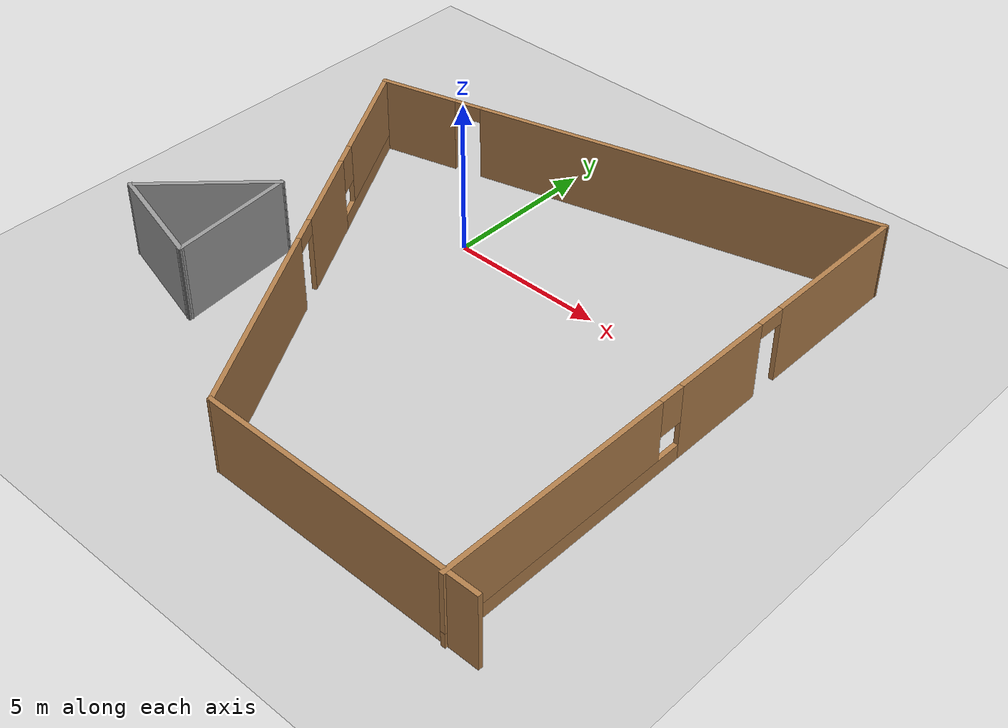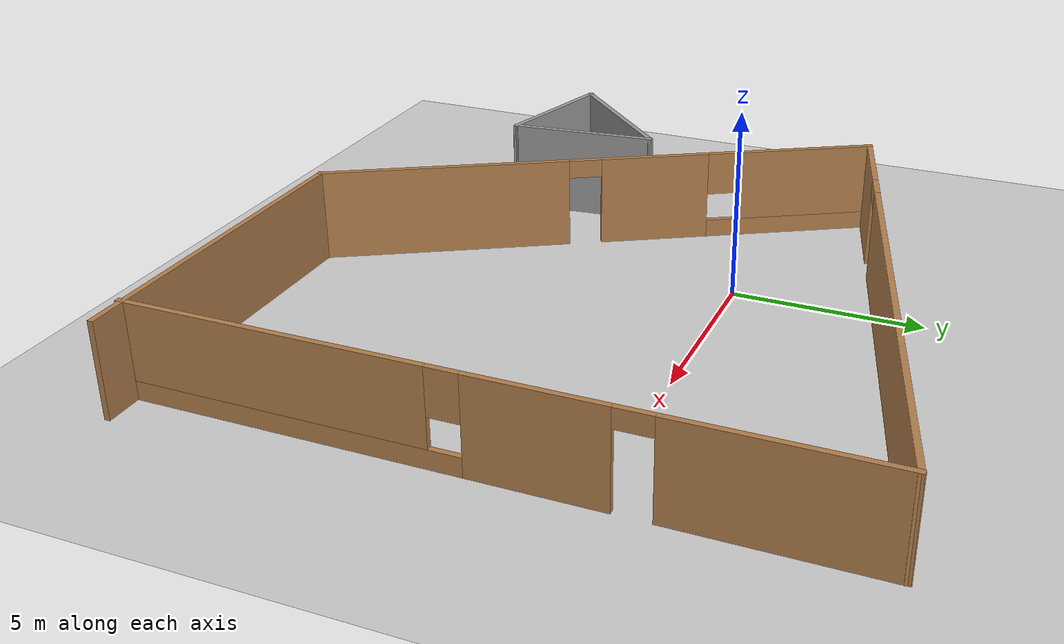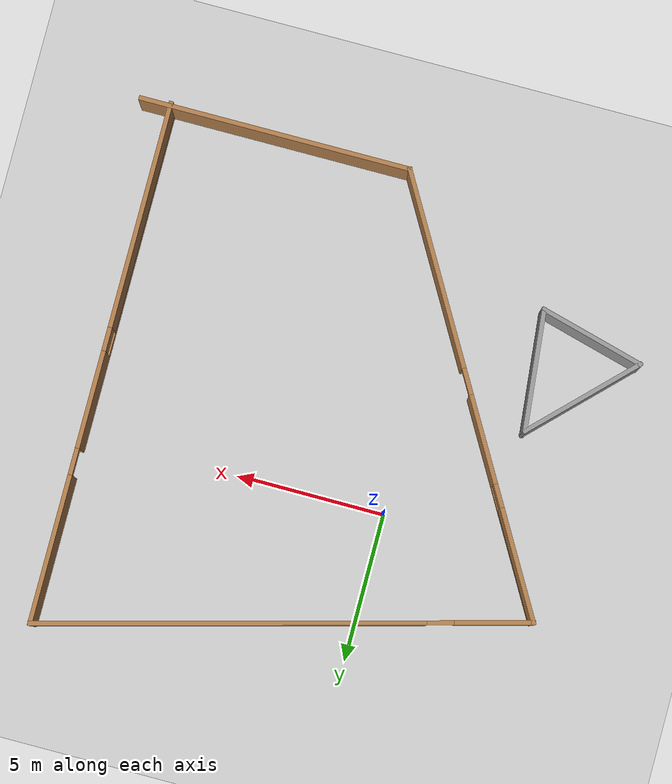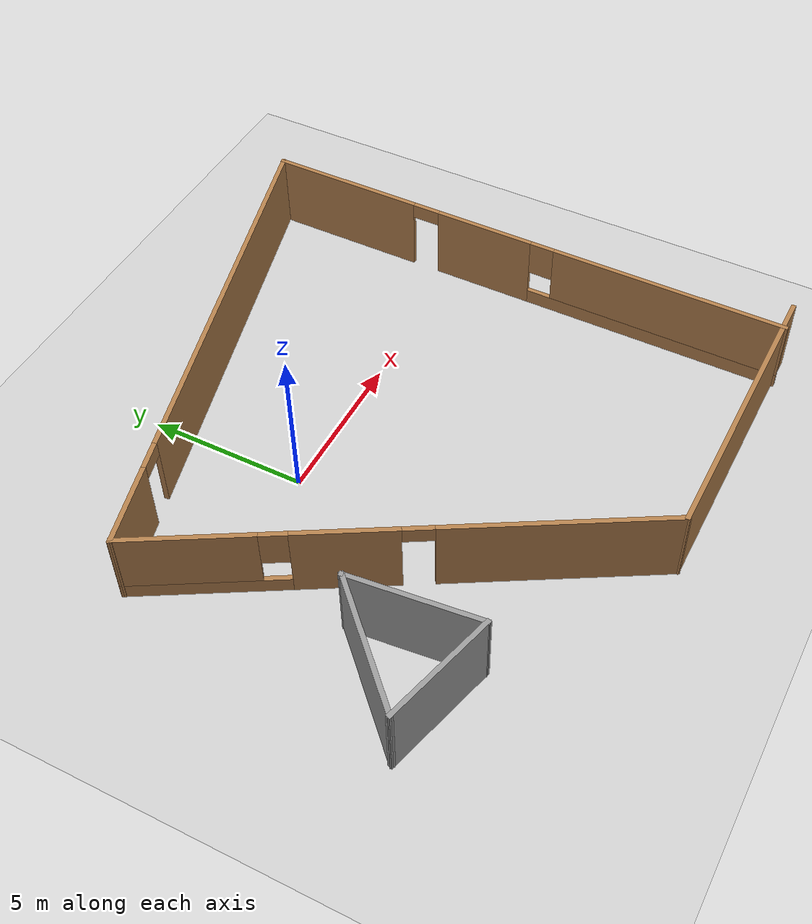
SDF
<sdf version="1.7">
 <world name="default">
  <light name="sun" type="directional">
   <pose>0 0 10 0 -0 0</pose>
   <diffuse>0.8 0.8 0.8 1</diffuse>
   <specular>0.2 0.2 0.2 1</specular>
   <attenuation>
    <range>1000</range>
    <constant>0.9</constant>
    <linear>0.01</linear>
    <quadratic>0.001</quadratic>
   </attenuation>
   <direction>-0.5 0.1 -0.9</direction>
   <spot><inner_angle>0</inner_angle><outer_angle>0</outer_angle><falloff>0</falloff></spot>
  </light>
  <model name="ground_plane">
   <static>1</static>
   <link name="link">
    <collision name="collision">
     <geometry><plane><normal>0 0 1</normal><size>100 100</size></plane></geometry>
     <surface><friction><ode><mu>100</mu><mu2>50</mu2></ode></friction></surface>
    </collision>
    <visual name="visual">
     <cast_shadows>0</cast_shadows>
     <geometry><plane><normal>0 0 1</normal><size>100 100</size></plane></geometry>
     <material>
      <script><uri>file://media/materials/scripts/gazebo.material</uri><name>Gazebo/Grey</name></script>
     </material>
    </visual>
   </link>
  </model>
  <gravity>0 0 -9.8</gravity>
  <magnetic_field>6e-06 2.3e-05 -4.2e-05</magnetic_field>
  <atmosphere type="adiabatic"/>
  <physics type="ode">
   <max_step_size>0.001</max_step_size>
   <real_time_factor>1</real_time_factor>
   <real_time_update_rate>1000</real_time_update_rate>
  </physics>
  <scene><ambient>0.4 0.4 0.4 1</ambient><background>0.7 0.7 0.7 1</background><shadows>1</shadows></scene>
  <audio><device>default</device></audio>
  <spherical_coordinates>
   <surface_model>EARTH_WGS84</surface_model>
   <latitude_deg>0</latitude_deg>
   <longitude_deg>0</longitude_deg>
   <elevation>0</elevation>
   <heading_deg>0</heading_deg>
  </spherical_coordinates>
  <model name="first_world">
   <pose>2.14531 -2.33762 0 0 -0 0</pose>
   <link name="Wall_0">
    <collision name="Wall_0_Collision">
     <geometry><box><size>4.5 0.15 2.5</size></box></geometry>
     <pose>0 0 1.25 0 -0 0</pose>
    </collision>
    <visual name="Wall_0_Visual">
     <pose>0 0 1.25 0 -0 0</pose>
     <geometry><box><size>4.5 0.15 2.5</size></box></geometry>
     <material>
      <script><uri>file://media/materials/scripts/gazebo.material</uri><name>Gazebo/Grey</name></script>
      <ambient>1 1 1 1</ambient>
     </material>
     <meta><layer>0</layer></meta>
    </visual>
    <pose>-7.44457 -2.93712 0 0 -0 -2.35619</pose>
   </link>
   <link name="Wall_1">
    <collision name="Wall_1_Collision">
     <geometry><box><size>3.75 0.15 2.5</size></box></geometry>
     <pose>0 0 1.25 0 -0 0</pose>
    </collision>
    <visual name="Wall_1_Visual">
     <pose>0 0 1.25 0 -0 0</pose>
     <geometry><box><size>3.75 0.15 2.5</size></box></geometry>
     <material>
      <script><uri>file://media/materials/scripts/gazebo.material</uri><name>Gazebo/Grey</name></script>
      <ambient>1 1 1 1</ambient>
     </material>
     <meta><layer>0</layer></meta>
    </visual>
    <pose>-7.24386 -4.94095 0 0 -0 -0.261799</pose>
   </link>
   <link name="Wall_2">
    <collision name="Wall_2_Collision">
     <geometry><box><size>4.17772 0.15 2.5</size></box></geometry>
     <pose>0 0 1.25 0 -0 0</pose>
    </collision>
    <visual name="Wall_2_Visual">
     <pose>0 0 1.25 0 -0 0</pose>
     <geometry><box><size>4.17772 0.15 2.5</size></box></geometry>
     <material>
      <script><uri>file://media/materials/scripts/gazebo.material</uri><name>Gazebo/Grey</name></script>
      <ambient>1 1 1 1</ambient>
     </material>
     <meta><layer>0</layer></meta>
    </visual>
    <pose>-5.70591 -3.40299 0 0 -0 1.67063</pose>
   </link>
   <link name="Wall_4">
    <collision name="Wall_4_Collision">
     <geometry><box><size>9.25 0.15 2.5</size></box></geometry>
     <pose>0 0 1.25 0 -0 0</pose>
    </collision>
    <visual name="Wall_4_Visual">
     <pose>0 0 1.25 0 -0 0</pose>
     <geometry><box><size>9.25 0.15 2.5</size></box></geometry>
     <material>
      <script><uri>file://media/materials/scripts/gazebo.material</uri><name>Gazebo/Wood</name></script>
      <ambient>0.921569 0.807843 0.615686 1</ambient>
     </material>
     <meta><layer>0</layer></meta>
    </visual>
    <pose>4.4636 -8.73361 0 0 -0 3.14159</pose>
   </link>
   <link name="Wall_5">
    <pose>-3.9239 -2.08686 0 0 -0 2.0944</pose>
    <visual name="Wall_5_Visual_0">
     <pose>-4.33116 0 1.25 0 -0 0</pose>
     <geometry><box><size>6.83768 0.15 2.5</size></box></geometry>
     <material>
      <script><uri>file://media/materials/scripts/gazebo.material</uri><name>Gazebo/Wood</name></script>
      <ambient>0.921569 0.807843 0.615686 1</ambient>
     </material>
     <meta><layer>0</layer></meta>
    </visual>
    <collision name="Wall_5_Collision_0">
     <geometry><box><size>6.83768 0.15 2.5</size></box></geometry>
     <pose>-4.33116 0 1.25 0 -0 0</pose>
    </collision>
    <visual name="Wall_5_Visual_1">
     <pose>1.4964 0 1.25 0 -0 0</pose>
     <geometry><box><size>3.01745 0.15 2.5</size></box></geometry>
     <material>
      <script><uri>file://media/materials/scripts/gazebo.material</uri><name>Gazebo/Wood</name></script>
      <ambient>0.921569 0.807843 0.615686 1</ambient>
     </material>
     <meta><layer>0</layer></meta>
    </visual>
    <collision name="Wall_5_Collision_1">
     <geometry><box><size>3.01745 0.15 2.5</size></box></geometry>
     <pose>1.4964 0 1.25 0 -0 0</pose>
    </collision>
    <visual name="Wall_5_Visual_2">
     <pose>5.37756 0 0.25 0 -0 0</pose>
     <geometry><box><size>4.74487 0.15 0.5</size></box></geometry>
     <material>
      <script><uri>file://media/materials/scripts/gazebo.material</uri><name>Gazebo/Wood</name></script>
      <ambient>0.921569 0.807843 0.615686 1</ambient>
     </material>
     <meta><layer>0</layer></meta>
    </visual>
    <collision name="Wall_5_Collision_2">
     <geometry><box><size>4.74487 0.15 0.5</size></box></geometry>
     <pose>5.37756 0 0.25 0 -0 0</pose>
    </collision>
    <visual name="Wall_5_Visual_3">
     <pose>5.77756 0 1.5 0 -0 0</pose>
     <geometry><box><size>3.94487 0.15 2</size></box></geometry>
     <material>
      <script><uri>file://media/materials/scripts/gazebo.material</uri><name>Gazebo/Wood</name></script>
      <ambient>0.921569 0.807843 0.615686 1</ambient>
     </material>
     <meta><layer>0</layer></meta>
    </visual>
    <collision name="Wall_5_Collision_3">
     <geometry><box><size>3.94487 0.15 2</size></box></geometry>
     <pose>5.77756 0 1.5 0 -0 0</pose>
    </collision>
    <visual name="Wall_5_Visual_4">
     <pose>3.40513 0 1.9 0 -0 0</pose>
     <geometry><box><size>0.8 0.15 1.2</size></box></geometry>
     <material>
      <script><uri>file://media/materials/scripts/gazebo.material</uri><name>Gazebo/Wood</name></script>
      <ambient>0.921569 0.807843 0.615686 1</ambient>
     </material>
     <meta><layer>0</layer></meta>
    </visual>
    <collision name="Wall_5_Collision_4">
     <geometry><box><size>0.8 0.15 1.2</size></box></geometry>
     <pose>3.40513 0 1.9 0 -0 0</pose>
    </collision>
    <visual name="Wall_5_Visual_5">
     <pose>-0.462322 0 2.25 0 -0 0</pose>
     <geometry><box><size>0.9 0.15 0.5</size></box></geometry>
     <material>
      <script><uri>file://media/materials/scripts/gazebo.material</uri><name>Gazebo/Wood</name></script>
      <ambient>0.921569 0.807843 0.615686 1</ambient>
     </material>
     <meta><layer>0</layer></meta>
    </visual>
    <collision name="Wall_5_Collision_5">
     <geometry><box><size>0.9 0.15 0.5</size></box></geometry>
     <pose>-0.462322 0 2.25 0 -0 0</pose>
    </collision>
   </link>
   <link name="Wall_6">
    <pose>0.135039 6.67573 0 0 -0 0.261799</pose>
    <visual name="Wall_6_Visual_0">
     <pose>-6.93117 0 1.25 0 -0 0</pose>
     <geometry><box><size>2.63766 0.15 2.5</size></box></geometry>
     <material>
      <script><uri>file://media/materials/scripts/gazebo.material</uri><name>Gazebo/Wood</name></script>
      <ambient>1 1 1 1</ambient>
     </material>
     <meta><layer>0</layer></meta>
    </visual>
    <collision name="Wall_6_Collision_0">
     <geometry><box><size>2.63766 0.15 2.5</size></box></geometry>
     <pose>-6.93117 0 1.25 0 -0 0</pose>
    </collision>
    <visual name="Wall_6_Visual_1">
     <pose>1.76883 0 1.25 0 -0 0</pose>
     <geometry><box><size>12.9623 0.15 2.5</size></box></geometry>
     <material>
      <script><uri>file://media/materials/scripts/gazebo.material</uri><name>Gazebo/Wood</name></script>
      <ambient>1 1 1 1</ambient>
     </material>
     <meta><layer>0</layer></meta>
    </visual>
    <collision name="Wall_6_Collision_1">
     <geometry><box><size>12.9623 0.15 2.5</size></box></geometry>
     <pose>1.76883 0 1.25 0 -0 0</pose>
    </collision>
    <visual name="Wall_6_Visual_2">
     <pose>-5.16234 0 2.25 0 -0 0</pose>
     <geometry><box><size>0.9 0.15 0.5</size></box></geometry>
     <material>
      <script><uri>file://media/materials/scripts/gazebo.material</uri><name>Gazebo/Wood</name></script>
      <ambient>1 1 1 1</ambient>
     </material>
     <meta><layer>0</layer></meta>
    </visual>
    <collision name="Wall_6_Collision_2">
     <geometry><box><size>0.9 0.15 0.5</size></box></geometry>
     <pose>-5.16234 0 2.25 0 -0 0</pose>
    </collision>
   </link>
   <link name="Wall_7">
    <pose>8.03148 -0.008427 0 0 -0 -1.5708</pose>
    <visual name="Wall_7_Visual_0">
     <pose>-6.33758 0 1.25 0 -0 0</pose>
     <geometry><box><size>5.07484 0.15 2.5</size></box></geometry>
     <material>
      <script><uri>file://media/materials/scripts/gazebo.material</uri><name>Gazebo/Wood</name></script>
      <ambient>0.921569 0.807843 0.615686 1</ambient>
     </material>
     <meta><layer>0</layer></meta>
    </visual>
    <collision name="Wall_7_Collision_0">
     <geometry><box><size>5.07484 0.15 2.5</size></box></geometry>
     <pose>-6.33758 0 1.25 0 -0 0</pose>
    </collision>
    <visual name="Wall_7_Visual_1">
     <pose>-1.25629 0 1.25 0 -0 0</pose>
     <geometry><box><size>3.28775 0.15 2.5</size></box></geometry>
     <material>
      <script><uri>file://media/materials/scripts/gazebo.material</uri><name>Gazebo/Wood</name></script>
      <ambient>0.921569 0.807843 0.615686 1</ambient>
     </material>
     <meta><layer>0</layer></meta>
    </visual>
    <collision name="Wall_7_Collision_1">
     <geometry><box><size>3.28775 0.15 2.5</size></box></geometry>
     <pose>-1.25629 0 1.25 0 -0 0</pose>
    </collision>
    <visual name="Wall_7_Visual_2">
     <pose>4.63129 0 0.25 0 -0 0</pose>
     <geometry><box><size>8.48741 0.15 0.5</size></box></geometry>
     <material>
      <script><uri>file://media/materials/scripts/gazebo.material</uri><name>Gazebo/Wood</name></script>
      <ambient>0.921569 0.807843 0.615686 1</ambient>
     </material>
     <meta><layer>0</layer></meta>
    </visual>
    <collision name="Wall_7_Collision_2">
     <geometry><box><size>8.48741 0.15 0.5</size></box></geometry>
     <pose>4.63129 0 0.25 0 -0 0</pose>
    </collision>
    <visual name="Wall_7_Visual_3">
     <pose>5.03129 0 1.5 0 -0 0</pose>
     <geometry><box><size>7.68741 0.15 2</size></box></geometry>
     <material>
      <script><uri>file://media/materials/scripts/gazebo.material</uri><name>Gazebo/Wood</name></script>
      <ambient>0.921569 0.807843 0.615686 1</ambient>
     </material>
     <meta><layer>0</layer></meta>
    </visual>
    <collision name="Wall_7_Collision_3">
     <geometry><box><size>7.68741 0.15 2</size></box></geometry>
     <pose>5.03129 0 1.5 0 -0 0</pose>
    </collision>
    <visual name="Wall_7_Visual_4">
     <pose>0.787586 0 1.9 0 -0 0</pose>
     <geometry><box><size>0.8 0.15 1.2</size></box></geometry>
     <material>
      <script><uri>file://media/materials/scripts/gazebo.material</uri><name>Gazebo/Wood</name></script>
      <ambient>0.921569 0.807843 0.615686 1</ambient>
     </material>
     <meta><layer>0</layer></meta>
    </visual>
    <collision name="Wall_7_Collision_4">
     <geometry><box><size>0.8 0.15 1.2</size></box></geometry>
     <pose>0.787586 0 1.9 0 -0 0</pose>
    </collision>
    <visual name="Wall_7_Visual_5">
     <pose>-3.35016 0 2.25 0 -0 0</pose>
     <geometry><box><size>0.9 0.15 0.5</size></box></geometry>
     <material>
      <script><uri>file://media/materials/scripts/gazebo.material</uri><name>Gazebo/Wood</name></script>
      <ambient>0.921569 0.807843 0.615686 1</ambient>
     </material>
     <meta><layer>0</layer></meta>
    </visual>
    <collision name="Wall_7_Collision_5">
     <geometry><box><size>0.9 0.15 0.5</size></box></geometry>
     <pose>-3.35016 0 2.25 0 -0 0</pose>
    </collision>
   </link>
   <static>1</static>
  </model>
 </world>
</sdf>
